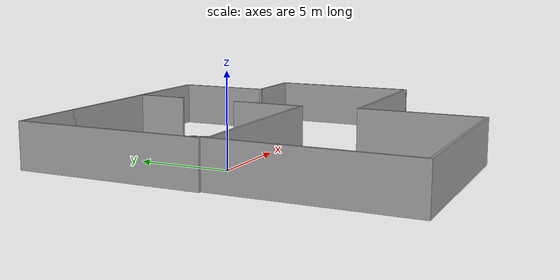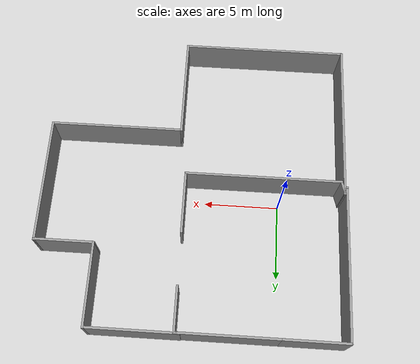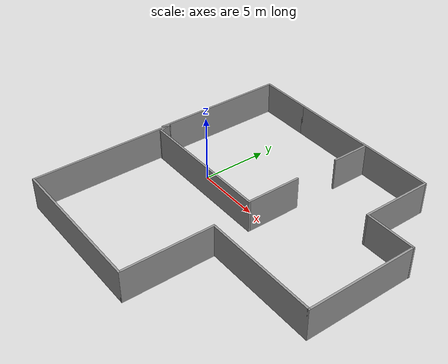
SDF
<?xml version='1.0'?>
<sdf version='1.6'>
  <model name='nik'>
    <pose frame=''>5.72797 -0.982975 0 0 -0 0</pose>
    <link name='Wall_0'>
      <collision name='Wall_0_Collision'>
        <geometry>
          <box>
            <size>0.3 0.15 2.5</size>
          </box>
        </geometry>
        <pose frame=''>0 0 1.25 0 -0 0</pose>
      </collision>
      <visual name='Wall_0_Visual'>
        <pose frame=''>0 0 1.25 0 -0 0</pose>
        <geometry>
          <box>
            <size>0.3 0.15 2.5</size>
          </box>
        </geometry>
        <material>
          <script>
            <uri>file://media/materials/scripts/gazebo.material</uri>
            <name>Gazebo/Grey</name>
          </script>
          <ambient>1 1 1 1</ambient>
        </material>
      </visual>
      <pose frame=''>-9.97297 0.142975 0 0 -0 3.14159</pose>
    </link>
    <link name='Wall_1'>
      <collision name='Wall_1_Collision'>
        <geometry>
          <box>
            <size>10.25 0.15 2.5</size>
          </box>
        </geometry>
        <pose frame=''>0 0 1.25 0 -0 0</pose>
      </collision>
      <visual name='Wall_1_Visual'>
        <pose frame=''>0 0 1.25 0 -0 0</pose>
        <geometry>
          <box>
            <size>10.25 0.15 2.5</size>
          </box>
        </geometry>
        <material>
          <script>
            <uri>file://media/materials/scripts/gazebo.material</uri>
            <name>Gazebo/Grey</name>
          </script>
          <ambient>1 1 1 1</ambient>
        </material>
      </visual>
      <pose frame=''>-10.048 5.19297 0 0 -0 1.5708</pose>
    </link>
    <link name='Wall_10'>
      <collision name='Wall_10_Collision'>
        <geometry>
          <box>
            <size>11.25 0.15 2.5</size>
          </box>
        </geometry>
        <pose frame=''>0 0 1.25 0 -0 0</pose>
      </collision>
      <visual name='Wall_10_Visual'>
        <pose frame=''>0 0 1.25 0 -0 0</pose>
        <geometry>
          <box>
            <size>11.25 0.15 2.5</size>
          </box>
        </geometry>
        <material>
          <script>
            <uri>file://media/materials/scripts/gazebo.material</uri>
            <name>Gazebo/Grey</name>
          </script>
          <ambient>1 1 1 1</ambient>
        </material>
      </visual>
      <pose frame=''>-4.36203 -10.275 0 0 -0 0</pose>
    </link>
    <link name='Wall_11'>
      <collision name='Wall_11_Collision'>
        <geometry>
          <box>
            <size>7 0.15 2.5</size>
          </box>
        </geometry>
        <pose frame=''>0 0 1.25 0 -0 0</pose>
      </collision>
      <visual name='Wall_11_Visual'>
        <pose frame=''>0 0 1.25 0 -0 0</pose>
        <geometry>
          <box>
            <size>7 0.15 2.5</size>
          </box>
        </geometry>
        <material>
          <script>
            <uri>file://media/materials/scripts/gazebo.material</uri>
            <name>Gazebo/Grey</name>
          </script>
          <ambient>1 1 1 1</ambient>
        </material>
      </visual>
      <pose frame=''>1.18797 -6.85 0 0 -0 1.5708</pose>
    </link>
    <link name='Wall_12'>
      <collision name='Wall_12_Collision'>
        <geometry>
          <box>
            <size>9 0.15 2.5</size>
          </box>
        </geometry>
        <pose frame=''>0 0 1.25 0 -0 0</pose>
      </collision>
      <visual name='Wall_12_Visual'>
        <pose frame=''>0 0 1.25 0 -0 0</pose>
        <geometry>
          <box>
            <size>9 0.15 2.5</size>
          </box>
        </geometry>
        <material>
          <script>
            <uri>file://media/materials/scripts/gazebo.material</uri>
            <name>Gazebo/Grey</name>
          </script>
          <ambient>1 1 1 1</ambient>
        </material>
      </visual>
      <pose frame=''>5.61297 -3.425 0 0 -0 0</pose>
    </link>
    <link name='Wall_13'>
      <collision name='Wall_13_Collision'>
        <geometry>
          <box>
            <size>8.5 0.15 2.5</size>
          </box>
        </geometry>
        <pose frame=''>0 0 1.25 0 -0 0</pose>
      </collision>
      <visual name='Wall_13_Visual'>
        <pose frame=''>0 0 1.25 0 -0 0</pose>
        <geometry>
          <box>
            <size>8.5 0.15 2.5</size>
          </box>
        </geometry>
        <material>
          <script>
            <uri>file://media/materials/scripts/gazebo.material</uri>
            <name>Gazebo/Grey</name>
          </script>
          <ambient>1 1 1 1</ambient>
        </material>
      </visual>
      <pose frame=''>10.038 0.75 0 0 -0 1.5708</pose>
    </link>
    <link name='Wall_14'>
      <collision name='Wall_14_Collision'>
        <geometry>
          <box>
            <size>0.16 0.15 2.5</size>
          </box>
        </geometry>
        <pose frame=''>0 0 1.25 0 -0 0</pose>
      </collision>
      <visual name='Wall_14_Visual'>
        <pose frame=''>0 0 1.25 0 -0 0</pose>
        <geometry>
          <box>
            <size>0.16 0.15 2.5</size>
          </box>
        </geometry>
        <material>
          <script>
            <uri>file://media/materials/scripts/gazebo.material</uri>
            <name>Gazebo/Grey</name>
          </script>
          <ambient>1 1 1 1</ambient>
        </material>
      </visual>
      <pose frame=''>10.043 4.925 0 0 -0 0</pose>
    </link>
    <link name='Wall_15'>
      <collision name='Wall_15_Collision'>
        <geometry>
          <box>
            <size>4 0.15 2.5</size>
          </box>
        </geometry>
        <pose frame=''>0 0 1.25 0 -0 0</pose>
      </collision>
      <visual name='Wall_15_Visual'>
        <pose frame=''>0 0 1.25 0 -0 0</pose>
        <geometry>
          <box>
            <size>4 0.15 2.5</size>
          </box>
        </geometry>
        <material>
          <script>
            <uri>file://media/materials/scripts/gazebo.material</uri>
            <name>Gazebo/Grey</name>
          </script>
          <ambient>1 1 1 1</ambient>
        </material>
      </visual>
      <pose frame=''>8.12297 4.925 0 0 -0 3.14159</pose>
    </link>
    <link name='Wall_16'>
      <collision name='Wall_16_Collision'>
        <geometry>
          <box>
            <size>5.5 0.15 2.5</size>
          </box>
        </geometry>
        <pose frame=''>0 0 1.25 0 -0 0</pose>
      </collision>
      <visual name='Wall_16_Visual'>
        <pose frame=''>0 0 1.25 0 -0 0</pose>
        <geometry>
          <box>
            <size>5.5 0.15 2.5</size>
          </box>
        </geometry>
        <material>
          <script>
            <uri>file://media/materials/scripts/gazebo.material</uri>
            <name>Gazebo/Grey</name>
          </script>
          <ambient>1 1 1 1</ambient>
        </material>
      </visual>
      <pose frame=''>6.19797 7.6 0 0 -0 1.5708</pose>
    </link>
    <link name='Wall_17'>
      <collision name='Wall_17_Collision'>
        <geometry>
          <box>
            <size>6 0.15 2.5</size>
          </box>
        </geometry>
        <pose frame=''>0 0 1.25 0 -0 0</pose>
      </collision>
      <visual name='Wall_17_Visual'>
        <pose frame=''>0 0 1.25 0 -0 0</pose>
        <geometry>
          <box>
            <size>6 0.15 2.5</size>
          </box>
        </geometry>
        <material>
          <script>
            <uri>file://media/materials/scripts/gazebo.material</uri>
            <name>Gazebo/Grey</name>
          </script>
          <ambient>1 1 1 1</ambient>
        </material>
      </visual>
      <pose frame=''>3.27297 10.275 0 0 -0 3.14159</pose>
    </link>
    <link name='Wall_2'>
      <collision name='Wall_2_Collision'>
        <geometry>
          <box>
            <size>4.25 0.15 2.5</size>
          </box>
        </geometry>
        <pose frame=''>0 0 1.25 0 -0 0</pose>
      </collision>
      <visual name='Wall_2_Visual'>
        <pose frame=''>0 0 1.25 0 -0 0</pose>
        <geometry>
          <box>
            <size>4.25 0.15 2.5</size>
          </box>
        </geometry>
        <material>
          <script>
            <uri>file://media/materials/scripts/gazebo.material</uri>
            <name>Gazebo/Grey</name>
          </script>
          <ambient>1 1 1 1</ambient>
        </material>
      </visual>
      <pose frame=''>-7.99797 10.243 0 0 -0 0</pose>
    </link>
    <link name='Wall_3'>
      <collision name='Wall_3_Collision'>
        <geometry>
          <box>
            <size>6.75 0.15 2.5</size>
          </box>
        </geometry>
        <pose frame=''>0 0 1.25 0 -0 0</pose>
      </collision>
      <visual name='Wall_3_Visual'>
        <pose frame=''>0 0 1.25 0 -0 0</pose>
        <geometry>
          <box>
            <size>6.75 0.15 2.5</size>
          </box>
        </geometry>
        <material>
          <script>
            <uri>file://media/materials/scripts/gazebo.material</uri>
            <name>Gazebo/Grey</name>
          </script>
          <ambient>1 1 1 1</ambient>
        </material>
      </visual>
      <pose frame=''>-2.64797 10.243 0 0 -0 0</pose>
    </link>
    <link name='Wall_4'>
      <collision name='Wall_4_Collision'>
        <geometry>
          <box>
            <size>3 0.15 2.5</size>
          </box>
        </geometry>
        <pose frame=''>0 0 1.25 0 -0 0</pose>
      </collision>
      <visual name='Wall_4_Visual'>
        <pose frame=''>0 0 1.25 0 -0 0</pose>
        <geometry>
          <box>
            <size>3 0.15 2.5</size>
          </box>
        </geometry>
        <material>
          <script>
            <uri>file://media/materials/scripts/gazebo.material</uri>
            <name>Gazebo/Grey</name>
          </script>
          <ambient>1 1 1 1</ambient>
        </material>
      </visual>
      <pose frame=''>0.652033 8.81798 0 0 0 -1.5708</pose>
    </link>
    <link name='Wall_6'>
      <collision name='Wall_6_Collision'>
        <geometry>
          <box>
            <size>4.25 0.15 2.5</size>
          </box>
        </geometry>
        <pose frame=''>0 0 1.25 0 -0 0</pose>
      </collision>
      <visual name='Wall_6_Visual'>
        <pose frame=''>0 0 1.25 0 -0 0</pose>
        <geometry>
          <box>
            <size>4.25 0.15 2.5</size>
          </box>
        </geometry>
        <material>
          <script>
            <uri>file://media/materials/scripts/gazebo.material</uri>
            <name>Gazebo/Grey</name>
          </script>
          <ambient>1 1 1 1</ambient>
        </material>
      </visual>
      <pose frame=''>0.657964 1.80396 0 0 0 -1.5708</pose>
    </link>
    <link name='Wall_7'>
      <collision name='Wall_7_Collision'>
        <geometry>
          <box>
            <size>10.5 0.15 2.5</size>
          </box>
        </geometry>
        <pose frame=''>0 0 1.25 0 -0 0</pose>
      </collision>
      <visual name='Wall_7_Visual'>
        <pose frame=''>0 0 1.25 0 -0 0</pose>
        <geometry>
          <box>
            <size>10.5 0.15 2.5</size>
          </box>
        </geometry>
        <material>
          <script>
            <uri>file://media/materials/scripts/gazebo.material</uri>
            <name>Gazebo/Grey</name>
          </script>
          <ambient>1 1 1 1</ambient>
        </material>
      </visual>
      <pose frame=''>-4.51704 -0.246037 0 0 -0 3.14159</pose>
    </link>
    <link name='Wall_8'>
      <collision name='Wall_8_Collision'>
        <geometry>
          <box>
            <size>1 0.15 2.5</size>
          </box>
        </geometry>
        <pose frame=''>0 0 1.25 0 -0 0</pose>
      </collision>
      <visual name='Wall_8_Visual'>
        <pose frame=''>0 0 1.25 0 -0 0</pose>
        <geometry>
          <box>
            <size>1 0.15 2.5</size>
          </box>
        </geometry>
        <material>
          <script>
            <uri>file://media/materials/scripts/gazebo.material</uri>
            <name>Gazebo/Grey</name>
          </script>
          <ambient>1 1 1 1</ambient>
        </material>
      </visual>
      <pose frame=''>-9.80203 0.164481 0 0 -0 1.8326</pose>
    </link>
    <link name='Wall_9'>
      <collision name='Wall_9_Collision'>
        <geometry>
          <box>
            <size>11 0.15 2.5</size>
          </box>
        </geometry>
        <pose frame=''>0 0 1.25 0 -0 0</pose>
      </collision>
      <visual name='Wall_9_Visual'>
        <pose frame=''>0 0 1.25 0 -0 0</pose>
        <geometry>
          <box>
            <size>11 0.15 2.5</size>
          </box>
        </geometry>
        <material>
          <script>
            <uri>file://media/materials/scripts/gazebo.material</uri>
            <name>Gazebo/Grey</name>
          </script>
          <ambient>1 1 1 1</ambient>
        </material>
      </visual>
      <pose frame=''>-9.91203 -4.85 0 0 0 -1.5708</pose>
    </link>
    <static>1</static>
  </model>
</sdf>
